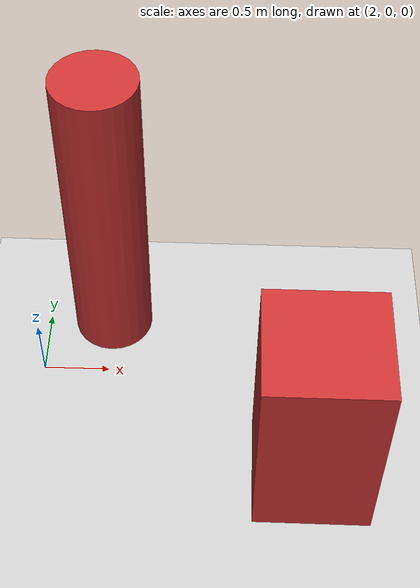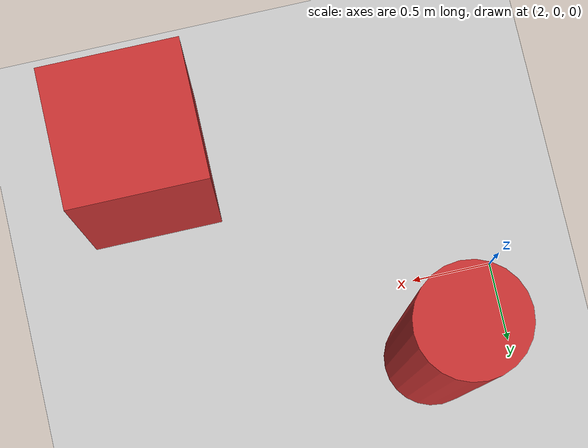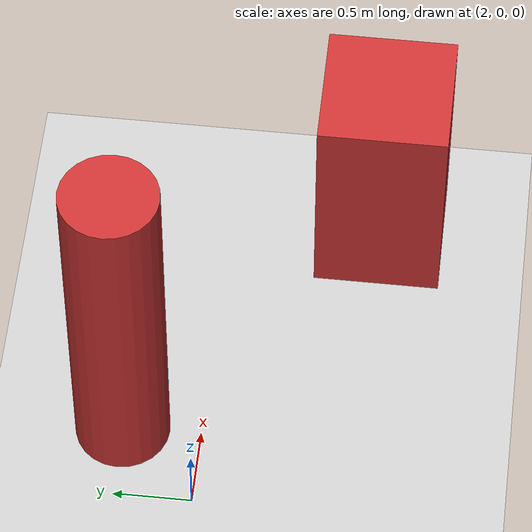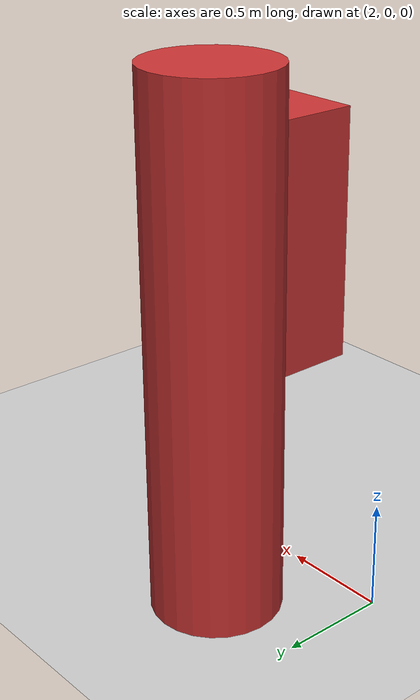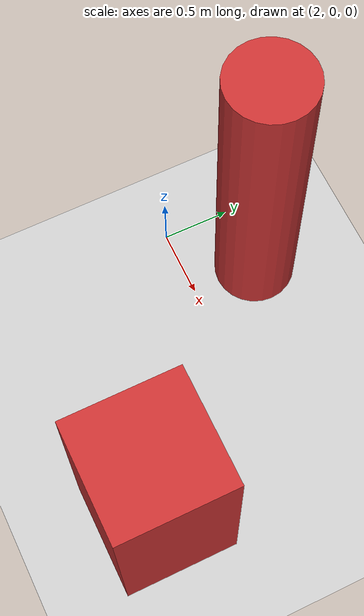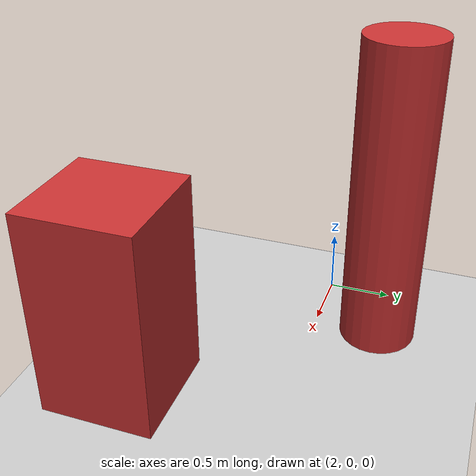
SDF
<?xml version="1.0" ?>
<sdf version="1.8">
  <world name="world_bridge_confined_inspection">
    <!-- Physics Engine Configuration -->
    <physics name="default_physics" default="true" type="dart">
      <max_step_size>0.001</max_step_size>
      <real_time_factor>1.0</real_time_factor>
      <real_time_update_rate>1000</real_time_update_rate>
    </physics>
    <!-- Environmental Wind Plugin -->
    <plugin name="gz::sim::systems::Wind" filename="gz-sim-wind-system">
      <horizontal>
        <magnitude>1.58</magnitude>
        <direction>1.50 0.50 0</direction>
      </horizontal>
    </plugin>
    <!-- Sun Light -->
    <light type="directional" name="sun">
      <cast_shadows>true</cast_shadows>
      <pose>0 0 10 0 0 0</pose>
      <diffuse>0.8 0.8 0.8 1</diffuse>
      <direction>-0.5 0.1 -0.9</direction>
    </light>
    <!-- Ground Plane -->
    <model name="ground_plane">
      <static>true</static>
      <link name="link">
        <collision name="collision">
          <geometry><plane><normal>0 0 1</normal><size>100 100</size></plane></geometry>
        </collision>
        <visual name="visual">
          <geometry><plane><normal>0 0 1</normal><size>100 100</size></plane></geometry>
          <material><ambient>0.8 0.8 0.8 1</ambient></material>
        </visual>
      </link>
    </model>
    <!-- Obstacle: obstacle_0_cylinder -->
    <model name="obstacle_0_cylinder">
      <static>true</static>
      <pose>2.50 0.50 1.20 0 0 0</pose>
      <link name="link">
        <collision name="collision">
          <geometry>
            <cylinder><radius>0.3</radius><length>2.5</length></cylinder>
          </geometry>
        </collision>
        <visual name="visual">
          <geometry>
            <cylinder><radius>0.3</radius><length>2.5</length></cylinder>
          </geometry>
          <material><ambient>0.8 0.2 0.2 1</ambient></material>
        </visual>
      </link>
    </model>
    <!-- Obstacle: obstacle_1_box -->
    <model name="obstacle_1_box">
      <static>true</static>
      <pose>4.00 -1.00 1.00 0 0 0</pose>
      <link name="link">
        <collision name="collision">
          <geometry>
            <box><size>0.8 0.8 1.5</size></box>
          </geometry>
        </collision>
        <visual name="visual">
          <geometry>
            <box><size>0.8 0.8 1.5</size></box>
          </geometry>
          <material><ambient>0.8 0.2 0.2 1</ambient></material>
        </visual>
      </link>
    </model>
  </world>
</sdf>
